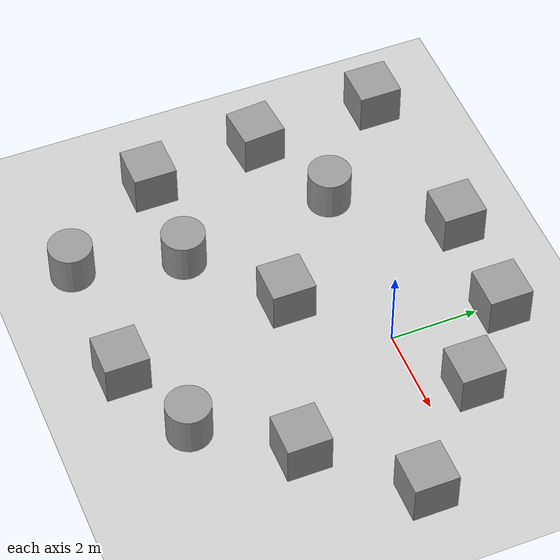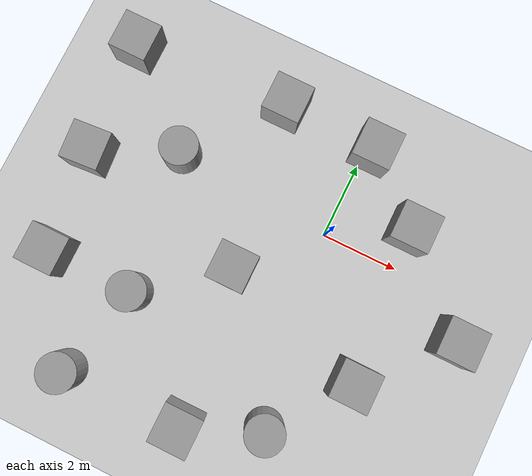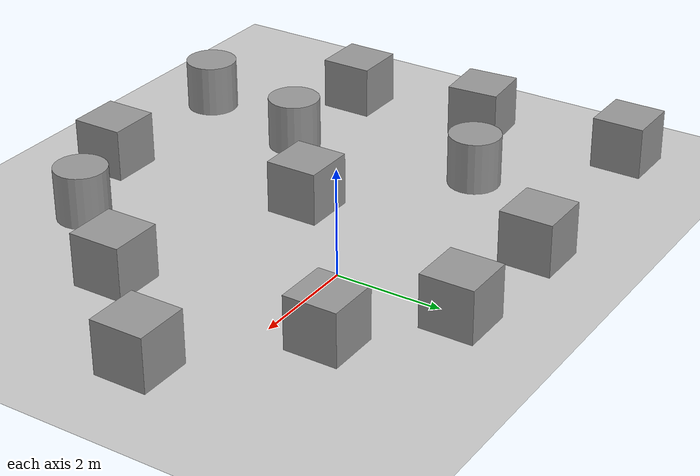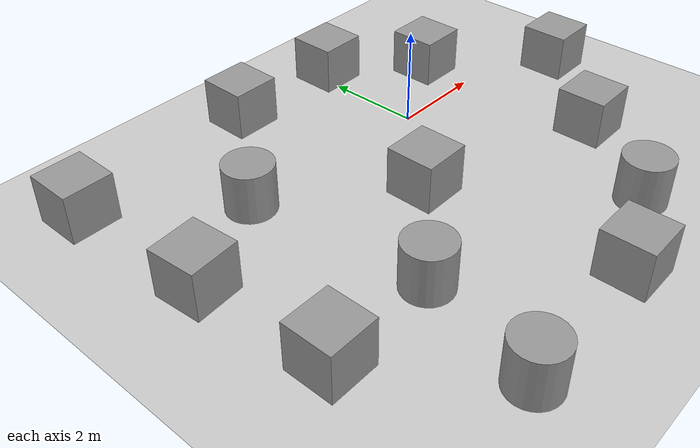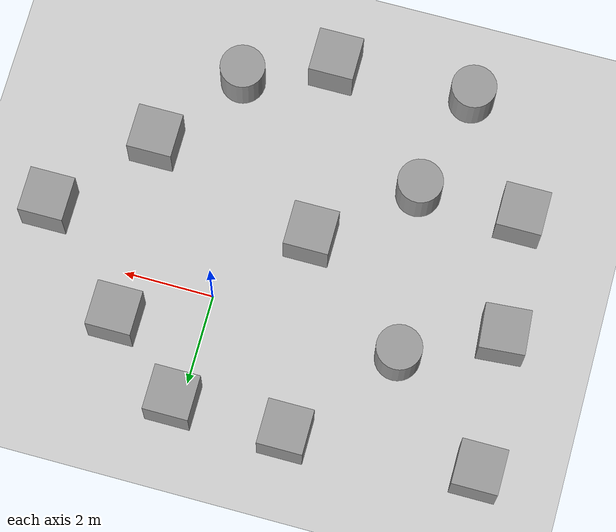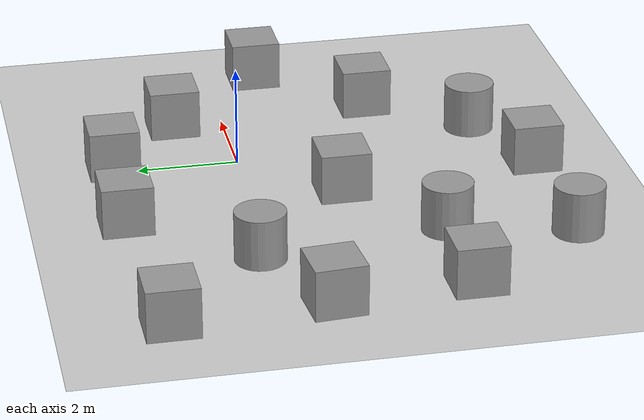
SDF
<sdf version="1.6">
 <world name="default">
  <light name="sun" type="directional">
   <pose>0 0 10 0 -0 0</pose>
   <diffuse>0.8 0.8 0.8 1</diffuse>
   <specular>0.2 0.2 0.2 1</specular>
   <attenuation>
    <range>1000</range>
    <constant>0.9</constant>
    <linear>0.01</linear>
    <quadratic>0.001</quadratic>
   </attenuation>
   <direction>-0.5 0.1 -0.9</direction>
  </light>
  <model name="ground_plane">
   <static>1</static>
   <link name="link">
    <collision name="collision">
     <geometry><plane><normal>0 0 1</normal><size>100 100</size></plane></geometry>
     <surface><friction><ode><mu>100</mu><mu2>50</mu2></ode></friction></surface>
    </collision>
    <visual name="visual">
     <cast_shadows>0</cast_shadows>
     <geometry><plane><normal>0 0 1</normal><size>100 100</size></plane></geometry>
     <material>
      <script><uri>file://media/materials/scripts/gazebo.material</uri><name>Gazebo/Grey</name></script>
     </material>
    </visual>
   </link>
  </model>
  <gravity>0 0 -9.8</gravity>
  <magnetic_field>6e-06 2.3e-05 -4.2e-05</magnetic_field>
  <atmosphere type="adiabatic"/>
  <physics name="default_physics" default="0" type="ode">
   <max_step_size>0.001</max_step_size>
   <real_time_factor>1</real_time_factor>
   <real_time_update_rate>1000</real_time_update_rate>
  </physics>
  <scene><ambient>0.4 0.4 0.4 1</ambient><background>0.7 0.7 0.7 1</background><shadows>1</shadows></scene>
  <spherical_coordinates>
   <surface_model>EARTH_WGS84</surface_model>
   <latitude_deg>0</latitude_deg>
   <longitude_deg>0</longitude_deg>
   <elevation>0</elevation>
   <heading_deg>0</heading_deg>
  </spherical_coordinates>
  <model name="unit_box">
   <pose>-1.71704 -1.78435 0.5 0 -0 0</pose>
   <link name="link">
    <inertial>
     <mass>1</mass>
     <inertia>
      <ixx>0.166667</ixx>
      <ixy>0</ixy>
      <ixz>0</ixz>
      <iyy>0.166667</iyy>
      <iyz>0</iyz>
      <izz>0.166667</izz>
     </inertia>
    </inertial>
    <collision name="collision"><geometry><box><size>1 1 1</size></box></geometry></collision>
    <visual name="visual">
     <geometry><box><size>1 1 1</size></box></geometry>
     <material>
      <script><name>Gazebo/Grey</name><uri>file://media/materials/scripts/gazebo.material</uri></script>
     </material>
    </visual>
   </link>
  </model>
  <model name="unit_box_0">
   <pose>2.14008 -3.01849 0.5 0 -0 0</pose>
   <link name="link">
    <inertial>
     <mass>1</mass>
     <inertia>
      <ixx>0.166667</ixx>
      <ixy>0</ixy>
      <ixz>0</ixz>
      <iyy>0.166667</iyy>
      <iyz>0</iyz>
      <izz>0.166667</izz>
     </inertia>
    </inertial>
    <collision name="collision"><geometry><box><size>1 1 1</size></box></geometry></collision>
    <visual name="visual">
     <geometry><box><size>1 1 1</size></box></geometry>
     <material>
      <script><name>Gazebo/Grey</name><uri>file://media/materials/scripts/gazebo.material</uri></script>
     </material>
    </visual>
   </link>
  </model>
  <model name="unit_box_1">
   <pose>1.8626 1.03803 0.5 0 -0 0</pose>
   <link name="link">
    <inertial>
     <mass>1</mass>
     <inertia>
      <ixx>0.166667</ixx>
      <ixy>0</ixy>
      <ixz>0</ixz>
      <iyy>0.166667</iyy>
      <iyz>0</iyz>
      <izz>0.166667</izz>
     </inertia>
    </inertial>
    <collision name="collision"><geometry><box><size>1 1 1</size></box></geometry></collision>
    <visual name="visual">
     <geometry><box><size>1 1 1</size></box></geometry>
     <material>
      <script><name>Gazebo/Grey</name><uri>file://media/materials/scripts/gazebo.material</uri></script>
     </material>
    </visual>
   </link>
  </model>
  <model name="unit_box_2">
   <pose>-2.32755 2.56381 0.5 0 -0 5e-06</pose>
   <link name="link">
    <inertial>
     <mass>1</mass>
     <inertia>
      <ixx>0.166667</ixx>
      <ixy>0</ixy>
      <ixz>0</ixz>
      <iyy>0.166667</iyy>
      <iyz>0</iyz>
      <izz>0.166667</izz>
     </inertia>
    </inertial>
    <collision name="collision"><geometry><box><size>1 1 1</size></box></geometry></collision>
    <visual name="visual">
     <geometry><box><size>1 1 1</size></box></geometry>
     <material>
      <script><name>Gazebo/Grey</name><uri>file://media/materials/scripts/gazebo.material</uri></script>
     </material>
    </visual>
   </link>
  </model>
  <model name="unit_box_3">
   <pose>-6.45744 2.31674 0.5 0 -0 5e-06</pose>
   <link name="link">
    <inertial>
     <mass>1</mass>
     <inertia>
      <ixx>0.166667</ixx>
      <ixy>0</ixy>
      <ixz>0</ixz>
      <iyy>0.166667</iyy>
      <iyz>0</iyz>
      <izz>0.166667</izz>
     </inertia>
    </inertial>
    <collision name="collision"><geometry><box><size>1 1 1</size></box></geometry></collision>
    <visual name="visual">
     <geometry><box><size>1 1 1</size></box></geometry>
     <material>
      <script><name>Gazebo/Grey</name><uri>file://media/materials/scripts/gazebo.material</uri></script>
     </material>
    </visual>
   </link>
  </model>
  <model name="unit_box_4">
   <pose>-1.20188 -5.78327 0.5 0 -0 0</pose>
   <link name="link">
    <inertial>
     <mass>1</mass>
     <inertia>
      <ixx>0.166667</ixx>
      <ixy>0</ixy>
      <ixz>0</ixz>
      <iyy>0.166667</iyy>
      <iyz>0</iyz>
      <izz>0.166667</izz>
     </inertia>
    </inertial>
    <collision name="collision"><geometry><box><size>1 1 1</size></box></geometry></collision>
    <visual name="visual">
     <geometry><box><size>1 1 1</size></box></geometry>
     <material>
      <script><name>Gazebo/Grey</name><uri>file://media/materials/scripts/gazebo.material</uri></script>
     </material>
    </visual>
   </link>
  </model>
  <model name="unit_box_5">
   <pose>-6.01176 -3.40804 0.5 0 -0 0</pose>
   <link name="link">
    <inertial>
     <mass>1</mass>
     <inertia>
      <ixx>0.166667</ixx>
      <ixy>0</ixy>
      <ixz>0</ixz>
      <iyy>0.166667</iyy>
      <iyz>0</iyz>
      <izz>0.166667</izz>
     </inertia>
    </inertial>
    <collision name="collision"><geometry><box><size>1 1 1</size></box></geometry></collision>
    <visual name="visual">
     <geometry><box><size>1 1 1</size></box></geometry>
     <material>
      <script><name>Gazebo/Grey</name><uri>file://media/materials/scripts/gazebo.material</uri></script>
     </material>
    </visual>
   </link>
  </model>
  <model name="unit_box_6">
   <pose>3.99089 -1.01368 0.5 0 -0 0</pose>
   <link name="link">
    <inertial>
     <mass>1</mass>
     <inertia>
      <ixx>0.166667</ixx>
      <ixy>0</ixy>
      <ixz>0</ixz>
      <iyy>0.166667</iyy>
      <iyz>0</iyz>
      <izz>0.166667</izz>
     </inertia>
    </inertial>
    <collision name="collision"><geometry><box><size>1 1 1</size></box></geometry></collision>
    <visual name="visual">
     <geometry><box><size>1 1 1</size></box></geometry>
     <material>
      <script><name>Gazebo/Grey</name><uri>file://media/materials/scripts/gazebo.material</uri></script>
     </material>
    </visual>
   </link>
  </model>
  <model name="unit_box_7">
   <pose>0.174272 2.4859 0.5 0 -0 0</pose>
   <link name="link">
    <inertial>
     <mass>1</mass>
     <inertia>
      <ixx>0.166667</ixx>
      <ixy>0</ixy>
      <ixz>0</ixz>
      <iyy>0.166667</iyy>
      <iyz>0</iyz>
      <izz>0.166667</izz>
     </inertia>
    </inertial>
    <collision name="collision"><geometry><box><size>1 1 1</size></box></geometry></collision>
    <visual name="visual">
     <geometry><box><size>1 1 1</size></box></geometry>
     <material>
      <script><name>Gazebo/Grey</name><uri>file://media/materials/scripts/gazebo.material</uri></script>
     </material>
    </visual>
   </link>
  </model>
  <model name="unit_cylinder">
   <pose>-4.19859 0.278814 0.499993 -3e-06 -4e-06 -0</pose>
   <link name="link">
    <inertial>
     <mass>1</mass>
     <inertia><ixx>0.145833</ixx><ixy>0</ixy><ixz>0</ixz><iyy>0.145833</iyy><iyz>0</iyz><izz>0.125</izz></inertia>
    </inertial>
    <collision name="collision">
     <geometry><cylinder><radius>0.5</radius><length>1</length></cylinder></geometry>
    </collision>
    <visual name="visual">
     <geometry><cylinder><radius>0.5</radius><length>1</length></cylinder></geometry>
     <material>
      <script><name>Gazebo/Grey</name><uri>file://media/materials/scripts/gazebo.material</uri></script>
     </material>
    </visual>
   </link>
  </model>
  <model name="unit_cylinder_0">
   <pose>-3.71386 -3.42138 0.499998 4e-06 -1e-06 -0.440016</pose>
   <link name="link">
    <inertial>
     <mass>1</mass>
     <inertia><ixx>0.145833</ixx><ixy>0</ixy><ixz>0</ixz><iyy>0.145833</iyy><iyz>0</iyz><izz>0.125</izz></inertia>
    </inertial>
    <collision name="collision">
     <geometry><cylinder><radius>0.5</radius><length>1</length></cylinder></geometry>
    </collision>
    <visual name="visual">
     <geometry><cylinder><radius>0.5</radius><length>1</length></cylinder></geometry>
     <material>
      <script><name>Gazebo/Grey</name><uri>file://media/materials/scripts/gazebo.material</uri></script>
     </material>
    </visual>
   </link>
  </model>
  <model name="unit_cylinder_1">
   <pose>0.704916 -4.95739 0.499997 3e-06 4e-06 -0</pose>
   <link name="link">
    <inertial>
     <mass>1</mass>
     <inertia><ixx>0.145833</ixx><ixy>0</ixy><ixz>0</ixz><iyy>0.145833</iyy><iyz>0</iyz><izz>0.125</izz></inertia>
    </inertial>
    <collision name="collision">
     <geometry><cylinder><radius>0.5</radius><length>1</length></cylinder></geometry>
    </collision>
    <visual name="visual">
     <geometry><cylinder><radius>0.5</radius><length>1</length></cylinder></geometry>
     <material>
      <script><name>Gazebo/Grey</name><uri>file://media/materials/scripts/gazebo.material</uri></script>
     </material>
    </visual>
   </link>
  </model>
  <model name="unit_cylinder_2">
   <pose>-4.30754 -5.84256 0.499997 3e-06 4e-06 -0</pose>
   <link name="link">
    <inertial>
     <mass>1</mass>
     <inertia><ixx>0.145833</ixx><ixy>0</ixy><ixz>0</ixz><iyy>0.145833</iyy><iyz>0</iyz><izz>0.125</izz></inertia>
    </inertial>
    <collision name="collision">
     <geometry><cylinder><radius>0.5</radius><length>1</length></cylinder></geometry>
    </collision>
    <visual name="visual">
     <geometry><cylinder><radius>0.5</radius><length>1</length></cylinder></geometry>
     <material>
      <script><name>Gazebo/Grey</name><uri>file://media/materials/scripts/gazebo.material</uri></script>
     </material>
    </visual>
   </link>
  </model>
  <model name="unit_box_8">
   <pose>-6.26498 -0.70304 0.5 0 -0 0.078471</pose>
   <link name="link">
    <inertial>
     <mass>1</mass>
     <inertia>
      <ixx>0.166667</ixx>
      <ixy>0</ixy>
      <ixz>0</ixz>
      <iyy>0.166667</iyy>
      <iyz>0</iyz>
      <izz>0.166667</izz>
     </inertia>
    </inertial>
    <collision name="collision"><geometry><box><size>1 1 1</size></box></geometry></collision>
    <visual name="visual">
     <geometry><box><size>1 1 1</size></box></geometry>
     <material>
      <script><name>Gazebo/Grey</name><uri>file://media/materials/scripts/gazebo.material</uri></script>
     </material>
    </visual>
   </link>
  </model>
  <light name="user_directional_light_0" type="directional">
   <pose>-1.64681 0.516465 1 0 -0 0</pose>
   <diffuse>0.5 0.5 0.5 1</diffuse>
   <specular>0.1 0.1 0.1 1</specular>
   <direction>0.1 0.1 -0.9</direction>
   <attenuation>
    <range>20</range>
    <constant>0.5</constant>
    <linear>0.01</linear>
    <quadratic>0.001</quadratic>
   </attenuation>
  </light>
  <light name="user_directional_light_1" type="directional">
   <pose>-1.67317 -2.18777 1 0 -0 0</pose>
   <diffuse>0.5 0.5 0.5 1</diffuse>
   <specular>0.1 0.1 0.1 1</specular>
   <direction>0.1 0.1 -0.9</direction>
   <attenuation>
    <range>20</range>
    <constant>0.5</constant>
    <linear>0.01</linear>
    <quadratic>0.001</quadratic>
   </attenuation>
  </light>
 </world>
</sdf>
